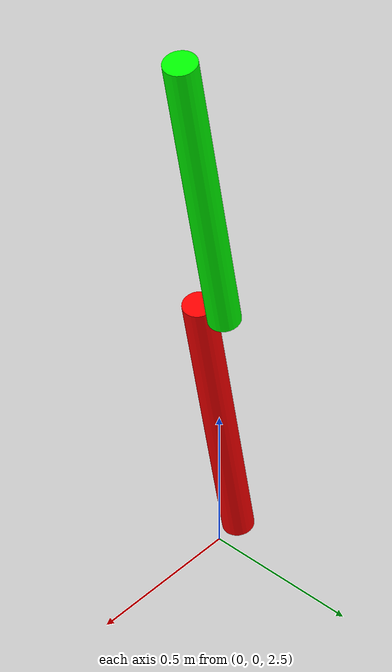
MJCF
<mujoco>
	<option gravity="0 0 -9.81" integrator="RK4">
		<flag energy="enable"/>
	</option>

	<worldbody>
		<light diffuse=".5 .5 .5" pos="0 0 3" dir="0 0 -1"/>
		<geom type="plane" size="2 2 .1" rgba="1 1 1 1"/>
		<body pos="0 0 3" euler="0 10 0">
			<joint name="pin" type="hinge" axis="0 1 0" pos="0 0 -.5"/>
			<geom type="cylinder" size=".05 .5" rgba="1 0 0 1" mass="1"/>

			<!--Moved a bit by y-axis to prevent collision-->
			<body pos="0 0.1 1" euler="0 0 0">
				<joint name="pin2" type="hinge" axis="0 1 0" pos="0 0 -0.5"/>
				<geom type="cylinder" size="0.05 0.5" rgba="0 1 0 1" mass="1"/>
 			</body>

		</body>
	</worldbody>
</mujoco>
